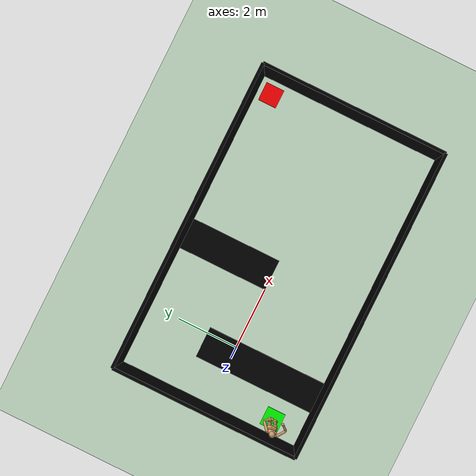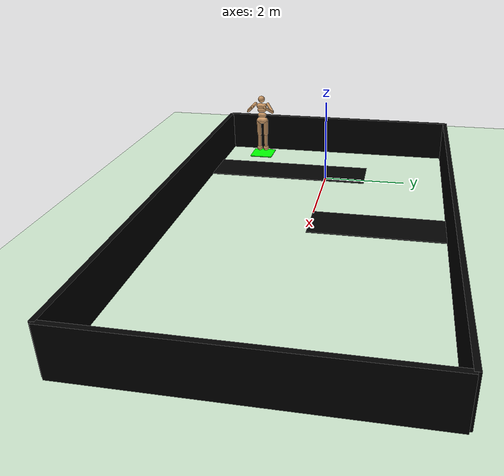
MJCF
<mujoco model="humanoid_arena">
    <compiler angle="degree" inertiafromgeom="true"/>
    <default>
        <joint armature="1" damping="1" limited="true"/>
        <geom conaffinity="1" condim="1" contype="1" margin="0.001" material="geom" rgba="0.8 0.6 .4 1"/>
        <motor ctrllimited="true" ctrlrange="-.4 .4"/>
    </default>

    <option integrator="RK4" iterations="50" solver="PGS" timestep="0.003"/>

    <size nkey="5" nuser_geom="1"/>

    <visual>
        <map fogend="5" fogstart="3"/>
    </visual>

    <asset>
        <texture builtin="gradient" height="100" rgb1=".4 .5 .6" rgb2="0 0 0" type="skybox" width="100"/>
        <texture builtin="flat" height="1278" mark="cross" markrgb="1 1 1" name="texgeom" random="0.01"
                 rgb1="0.8 0.6 0.4" rgb2="0.8 0.6 0.4" type="cube" width="127"/>
        <texture builtin="checker" height="100" name="texplane" rgb1="0 0 0" rgb2="0.8 0.8 0.8" type="2d" width="100"/>
        <material name="MatPlane" reflectance="0.5" shininess="1" specular="1"
                  texrepeat="60 60" texture="texplane"/>
        <material name="geom" texture="texgeom" texuniform="true"/>
    </asset>

    <worldbody>
        <!-- 기본 바닥 -->
        <light cutoff="100" diffuse="1 1 1" dir="-0 0 -1.3" directional="true" exponent="1"
               pos="0 0 1.3" specular=".1 .1 .1"/>
        <geom condim="3" friction="1 .1 .1" material="MatPlane" name="floor"
              pos="0 0 0" rgba="0.8 0.9 0.8 1" size="20 20 0.125" type="plane"/>

        <!-- ============================
             사각형 경기장 + start/goal
             ============================ -->
        <!-- 사각형 경기장 + start / goal -->
        <body name="arena">
            <!-- 아래쪽 벽 (y = -3) -->
            <geom name="wall_bottom" type="box"
                  pos="3 -3 0.5"
                  size="5 0.05 0.5"
                  rgba="0 0 0 1" contype="1" conaffinity="1"/>

            <!-- 위쪽 벽 (y = +3) -->
            <geom name="wall_top" type="box"
                  pos="3 3 0.5"
                  size="5 0.05 0.5"
                  rgba="0 0 0 1" contype="1" conaffinity="1"/>

            <!-- 왼쪽 벽 (x = -2) -->
            <geom name="wall_left" type="box"
                  pos="-2 0 0.5"
                  size="0.05 3 0.5"
                  rgba="0 0 0 1" contype="1" conaffinity="1"/>

            <!-- 오른쪽 벽 (x = +8) -->
            <geom name="wall_right" type="box"
                  pos="8 0 0.5"
                  size="0.05 3 0.5"
                  rgba="0 0 0 1" contype="1" conaffinity="1"/>

            <!-- 시작 지점 (초록 타일, 충돌 없음) -->
            <geom name="start_marker" type="box"
                  pos="-1.5 -2 0.02"
                  size="0.3 0.3 0.01"
                  rgba="0 1 0 1" contype="0" conaffinity="0"/>

            <!-- 골 지점 (빨간 타일, 충돌 없음) -->
            <geom name="goal_marker" type="box"
                  pos="7.5 2.5 0.02"
                  size="0.3 0.3 0.01"
                  rgba="1 0 0 1" contype="0" conaffinity="0"/>

            <!-- 구멍 지점 (검정 타일, 충돌 없음) -->
            <geom name="hole_marker_1" type="box"
                  pos="-0.3 -1 0.02"
                  size="0.5 2.0 0.01"
                  rgba="0 0 0 1" contype="1" conaffinity="1"/>

            <geom name="hole_marker_2" type="box"
                  pos="2.5 1.5 0.02"
                  size="0.5 1.5 0.01"
                  rgba="0 0 0 1" contype="1" conaffinity="1"/>
        </body>

        <!-- ============================
             아래는 원래 humanoid 본체
             ============================ -->
        <body name="torso" pos="-1.5 -2 1.4">
            <camera name="track" mode="trackcom" pos="0 -4 3" xyaxes="1 0 0 0 0.7 0.7"/>
            <joint armature="0" damping="0" limited="false" name="root"
                   pos="0 0 0" stiffness="0" type="free"/>
            <geom fromto="0 -.07 0 0 .07 0" name="torso1" size="0.07" type="capsule"/>
            <geom name="head" pos="0 0 .19" size=".09" type="sphere" user="258"/>
            <geom fromto="-.01 -.06 -.12 -.01 .06 -.12" name="uwaist" size="0.06" type="capsule"/>

            <body name="lwaist" pos="-.01 0 -0.260" quat="1.000 0 -0.002 0">
                <geom fromto="0 -.06 0 0 .06 0" name="lwaist" size="0.06" type="capsule"/>
                <joint armature="0.02" axis="0 0 1" damping="5" name="abdomen_z"
                       pos="0 0 0.065" range="-45 45" stiffness="20" type="hinge"/>
                <joint armature="0.02" axis="0 1 0" damping="5" name="abdomen_y"
                       pos="0 0 0.065" range="-75 30" stiffness="10" type="hinge"/>

                <body name="pelvis" pos="0 0 -0.165" quat="1.000 0 -0.002 0">
                    <joint armature="0.02" axis="1 0 0" damping="5" name="abdomen_x"
                           pos="0 0 0.1" range="-35 35" stiffness="10" type="hinge"/>
                    <geom fromto="-.02 -.07 0 -.02 .07 0" name="butt" size="0.09" type="capsule"/>

                    <body name="right_thigh" pos="0 -0.1 -0.04">
                        <joint armature="0.01" axis="1 0 0" damping="5" name="right_hip_x"
                               pos="0 0 0" range="-25 5" stiffness="10" type="hinge"/>
                        <joint armature="0.01" axis="0 0 1" damping="5" name="right_hip_z"
                               pos="0 0 0" range="-60 35" stiffness="10" type="hinge"/>
                        <joint armature="0.0080" axis="0 1 0" damping="5" name="right_hip_y"
                               pos="0 0 0" range="-110 20" stiffness="20" type="hinge"/>
                        <geom fromto="0 0 0 0 0.01 -.34" name="right_thigh1" size="0.06" type="capsule"/>

                        <body name="right_shin" pos="0 0.01 -0.403">
                            <joint armature="0.0060" axis="0 -1 0" name="right_knee"
                                   pos="0 0 .02" range="-160 -2" type="hinge"/>
                            <geom fromto="0 0 0 0 0 -.3" name="right_shin1" size="0.049" type="capsule"/>

                            <body name="right_foot" pos="0 0 -0.45">
                                <geom name="right_foot" pos="0 0 0.1" size="0.075"
                                      type="sphere" user="0"/>
                            </body>
                        </body>
                    </body>

                    <body name="left_thigh" pos="0 0.1 -0.04">
                        <joint armature="0.01" axis="-1 0 0" damping="5" name="left_hip_x"
                               pos="0 0 0" range="-25 5" stiffness="10" type="hinge"/>
                        <joint armature="0.01" axis="0 0 -1" damping="5" name="left_hip_z"
                               pos="0 0 0" range="-60 35" stiffness="10" type="hinge"/>
                        <joint armature="0.01" axis="0 1 0" damping="5" name="left_hip_y"
                               pos="0 0 0" range="-110 20" stiffness="20" type="hinge"/>
                        <geom fromto="0 0 0 0 -0.01 -.34" name="left_thigh1" size="0.06" type="capsule"/>

                        <body name="left_shin" pos="0 -0.01 -0.403">
                            <joint armature="0.0060" axis="0 -1 0" name="left_knee"
                                   pos="0 0 .02" range="-160 -2" stiffness="1" type="hinge"/>
                            <geom fromto="0 0 0 0 0 -.3" name="left_shin1" size="0.049" type="capsule"/>

                            <body name="left_foot" pos="0 0 -0.45">
                                <geom name="left_foot" type="sphere" size="0.075"
                                      pos="0 0 0.1" user="0"/>
                            </body>
                        </body>
                    </body>
                </body>
            </body>

            <body name="right_upper_arm" pos="0 -0.17 0.06">
                <joint armature="0.0068" axis="2 1 1" name="right_shoulder1"
                       pos="0 0 0" range="-85 60" stiffness="1" type="hinge"/>
                <joint armature="0.0051" axis="0 -1 1" name="right_shoulder2"
                       pos="0 0 0" range="-85 60" stiffness="1" type="hinge"/>
                <geom fromto="0 0 0 .16 -.16 -.16" name="right_uarm1" size="0.04 0.16" type="capsule"/>

                <body name="right_lower_arm" pos=".18 -.18 -.18">
                    <joint armature="0.0028" axis="0 -1 1" name="right_elbow"
                           pos="0 0 0" range="-90 50" stiffness="0" type="hinge"/>
                    <geom fromto="0.01 0.01 0.01 .17 .17 .17" name="right_larm"
                          size="0.031" type="capsule"/>
                    <geom name="right_hand" pos=".18 .18 .18" size="0.04" type="sphere"/>
                    <camera pos="0 0 0"/>
                </body>
            </body>

            <body name="left_upper_arm" pos="0 0.17 0.06">
                <joint armature="0.0068" axis="2 -1 1" name="left_shoulder1"
                       pos="0 0 0" range="-60 85" stiffness="1" type="hinge"/>
                <joint armature="0.0051" axis="0 1 1" name="left_shoulder2"
                       pos="0 0 0" range="-60 85" stiffness="1" type="hinge"/>
                <geom fromto="0 0 0 .16 .16 -.16" name="left_uarm1" size="0.04 0.16" type="capsule"/>

                <body name="left_lower_arm" pos=".18 .18 -.18">
                    <joint armature="0.0028" axis="0 -1 -1" name="left_elbow"
                           pos="0 0 0" range="-90 50" stiffness="0" type="hinge"/>
                    <geom fromto="0.01 -0.01 0.01 .17 -.17 .17" name="left_larm"
                          size="0.031" type="capsule"/>
                    <geom name="left_hand" pos=".18 -.18 .18" size="0.04" type="sphere"/>
                </body>
            </body>
        </body>
    </worldbody>

    <tendon>
        <fixed name="left_hipknee">
            <joint coef="-1" joint="left_hip_y"/>
            <joint coef="1" joint="left_knee"/>
        </fixed>
        <fixed name="right_hipknee">
            <joint coef="-1" joint="right_hip_y"/>
            <joint coef="1" joint="right_knee"/>
        </fixed>
    </tendon>

    <actuator>
        <motor gear="100" joint="abdomen_y" name="abdomen_y"/>
        <motor gear="100" joint="abdomen_z" name="abdomen_z"/>
        <motor gear="100" joint="abdomen_x" name="abdomen_x"/>
        <motor gear="100" joint="right_hip_x" name="right_hip_x"/>
        <motor gear="100" joint="right_hip_z" name="right_hip_z"/>
        <motor gear="300" joint="right_hip_y" name="right_hip_y"/>
        <motor gear="200" joint="right_knee" name="right_knee"/>
        <motor gear="100" joint="left_hip_x" name="left_hip_x"/>
        <motor gear="100" joint="left_hip_z" name="left_hip_z"/>
        <motor gear="300" joint="left_hip_y" name="left_hip_y"/>
        <motor gear="200" joint="left_knee" name="left_knee"/>
        <motor gear="25" joint="right_shoulder1" name="right_shoulder1"/>
        <motor gear="25" joint="right_shoulder2" name="right_shoulder2"/>
        <motor gear="25" joint="right_elbow" name="right_elbow"/>
        <motor gear="25" joint="left_shoulder1" name="left_shoulder1"/>
        <motor gear="25" joint="left_shoulder2" name="left_shoulder2"/>
        <motor gear="25" joint="left_elbow" name="left_elbow"/>
    </actuator>
</mujoco>
